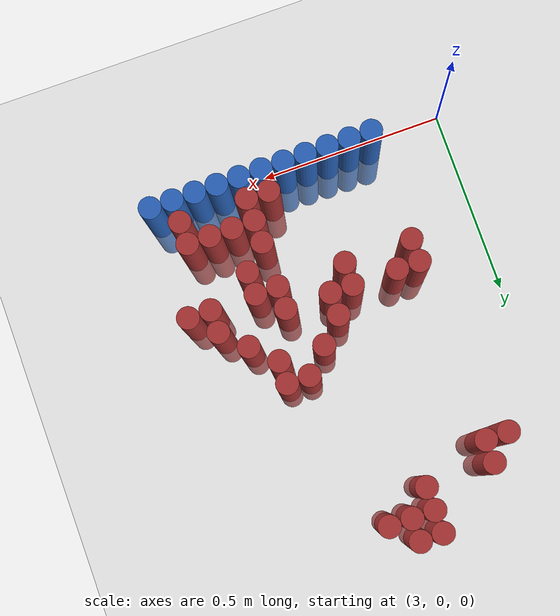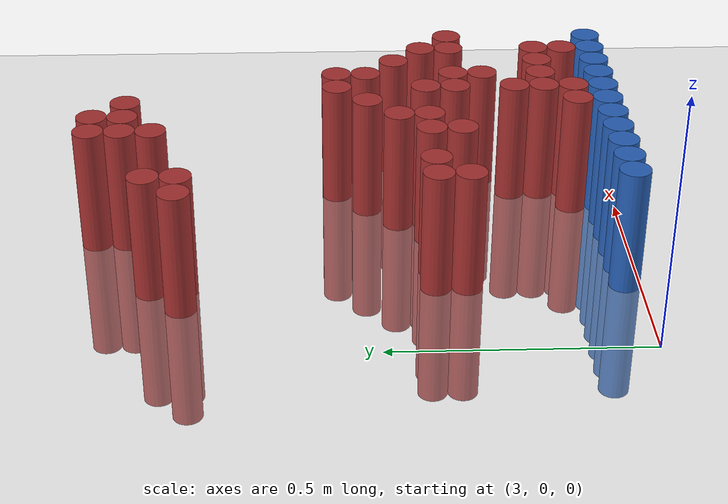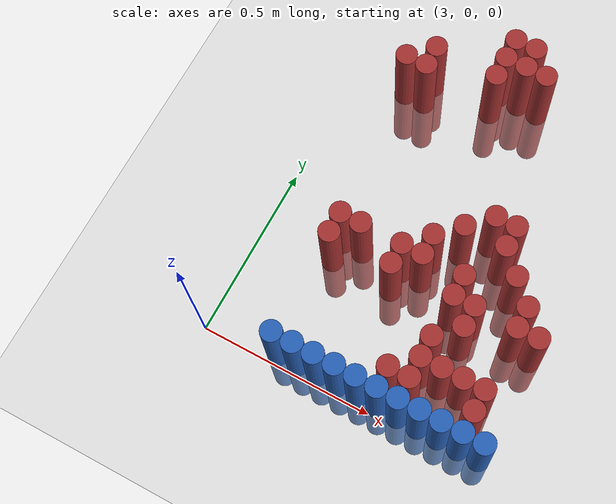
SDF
<sdf version="1.6">
 <world name="default">
  <model name="ground_plane">
   <static>1</static>
   <link name="link">
    <collision name="collision">
     <geometry><plane><normal>0 0 1</normal><size>100 100</size></plane></geometry>
     <surface><friction><ode><mu>100</mu><mu2>50</mu2></ode></friction></surface>
    </collision>
    <visual name="visual">
     <cast_shadows>0</cast_shadows>
     <geometry><plane><normal>0 0 1</normal><size>100 100</size></plane></geometry>
     <material>
      <script><uri>file://media/materials/scripts/gazebo.material</uri><name>Gazebo/Grey</name></script>
     </material>
    </visual>
   </link>
  </model>
  <model name="unit_cylinder_216">
   <static>1</static>
   <pose>3.390000 1.050000 0.000000 0.000000 0.000000 0.000000</pose>
   <link name="link">
    <inertial>
     <mass>1</mass>
     <inertia><ixx>0.145833</ixx><ixy>0</ixy><ixz>0</ixz><iyy>0.145833</iyy><iyz>0</iyz><izz>0.125</izz></inertia>
    </inertial>
    <collision name="collision">
     <geometry><cylinder><radius>0.030000</radius><length>0.5</length></cylinder></geometry>
    </collision>
    <visual name="visual">
     <geometry><cylinder><radius>0.030000</radius><length>0.5</length></cylinder></geometry>
     <material>
      <ambient>0.648000 0.192000 0.192000 1</ambient>
      <diffuse>0.648000 0.192000 0.192000 1</diffuse>
     </material>
     <material>
      <script><name>Gazebo/Grey</name><uri>file://media/materials/scripts/gazebo.material</uri></script>
     </material>
    </visual>
   </link>
  </model>
  <model name="unit_cylinder_217">
   <static>1</static>
   <pose>3.450000 1.050000 0.000000 0.000000 0.000000 0.000000</pose>
   <link name="link">
    <inertial>
     <mass>1</mass>
     <inertia><ixx>0.145833</ixx><ixy>0</ixy><ixz>0</ixz><iyy>0.145833</iyy><iyz>0</iyz><izz>0.125</izz></inertia>
    </inertial>
    <collision name="collision">
     <geometry><cylinder><radius>0.030000</radius><length>0.5</length></cylinder></geometry>
    </collision>
    <visual name="visual">
     <geometry><cylinder><radius>0.030000</radius><length>0.5</length></cylinder></geometry>
     <material>
      <ambient>0.648000 0.192000 0.192000 1</ambient>
      <diffuse>0.648000 0.192000 0.192000 1</diffuse>
     </material>
     <material>
      <script><name>Gazebo/Grey</name><uri>file://media/materials/scripts/gazebo.material</uri></script>
     </material>
    </visual>
   </link>
  </model>
  <model name="unit_cylinder_227">
   <static>1</static>
   <pose>3.390000 0.990000 0.000000 0.000000 0.000000 0.000000</pose>
   <link name="link">
    <inertial>
     <mass>1</mass>
     <inertia><ixx>0.145833</ixx><ixy>0</ixy><ixz>0</ixz><iyy>0.145833</iyy><iyz>0</iyz><izz>0.125</izz></inertia>
    </inertial>
    <collision name="collision">
     <geometry><cylinder><radius>0.030000</radius><length>0.5</length></cylinder></geometry>
    </collision>
    <visual name="visual">
     <geometry><cylinder><radius>0.030000</radius><length>0.5</length></cylinder></geometry>
     <material>
      <ambient>0.648000 0.192000 0.192000 1</ambient>
      <diffuse>0.648000 0.192000 0.192000 1</diffuse>
     </material>
     <material>
      <script><name>Gazebo/Grey</name><uri>file://media/materials/scripts/gazebo.material</uri></script>
     </material>
    </visual>
   </link>
  </model>
  <model name="unit_cylinder_228">
   <static>1</static>
   <pose>3.450000 0.990000 0.000000 0.000000 0.000000 0.000000</pose>
   <link name="link">
    <inertial>
     <mass>1</mass>
     <inertia><ixx>0.145833</ixx><ixy>0</ixy><ixz>0</ixz><iyy>0.145833</iyy><iyz>0</iyz><izz>0.125</izz></inertia>
    </inertial>
    <collision name="collision">
     <geometry><cylinder><radius>0.030000</radius><length>0.5</length></cylinder></geometry>
    </collision>
    <visual name="visual">
     <geometry><cylinder><radius>0.030000</radius><length>0.5</length></cylinder></geometry>
     <material>
      <ambient>0.648000 0.192000 0.192000 1</ambient>
      <diffuse>0.648000 0.192000 0.192000 1</diffuse>
     </material>
     <material>
      <script><name>Gazebo/Grey</name><uri>file://media/materials/scripts/gazebo.material</uri></script>
     </material>
    </visual>
   </link>
  </model>
  <model name="unit_cylinder_229">
   <static>1</static>
   <pose>3.510000 0.990000 0.000000 0.000000 0.000000 0.000000</pose>
   <link name="link">
    <inertial>
     <mass>1</mass>
     <inertia><ixx>0.145833</ixx><ixy>0</ixy><ixz>0</ixz><iyy>0.145833</iyy><iyz>0</iyz><izz>0.125</izz></inertia>
    </inertial>
    <collision name="collision">
     <geometry><cylinder><radius>0.030000</radius><length>0.5</length></cylinder></geometry>
    </collision>
    <visual name="visual">
     <geometry><cylinder><radius>0.030000</radius><length>0.5</length></cylinder></geometry>
     <material>
      <ambient>0.648000 0.192000 0.192000 1</ambient>
      <diffuse>0.648000 0.192000 0.192000 1</diffuse>
     </material>
     <material>
      <script><name>Gazebo/Grey</name><uri>file://media/materials/scripts/gazebo.material</uri></script>
     </material>
    </visual>
   </link>
  </model>
  <model name="unit_cylinder_235">
   <static>1</static>
   <pose>3.210000 0.930000 0.000000 0.000000 0.000000 0.000000</pose>
   <link name="link">
    <inertial>
     <mass>1</mass>
     <inertia><ixx>0.145833</ixx><ixy>0</ixy><ixz>0</ixz><iyy>0.145833</iyy><iyz>0</iyz><izz>0.125</izz></inertia>
    </inertial>
    <collision name="collision">
     <geometry><cylinder><radius>0.030000</radius><length>0.5</length></cylinder></geometry>
    </collision>
    <visual name="visual">
     <geometry><cylinder><radius>0.030000</radius><length>0.5</length></cylinder></geometry>
     <material>
      <ambient>0.648000 0.192000 0.192000 1</ambient>
      <diffuse>0.648000 0.192000 0.192000 1</diffuse>
     </material>
     <material>
      <script><name>Gazebo/Grey</name><uri>file://media/materials/scripts/gazebo.material</uri></script>
     </material>
    </visual>
   </link>
  </model>
  <model name="unit_cylinder_236">
   <static>1</static>
   <pose>3.390000 0.930000 0.000000 0.000000 0.000000 0.000000</pose>
   <link name="link">
    <inertial>
     <mass>1</mass>
     <inertia><ixx>0.145833</ixx><ixy>0</ixy><ixz>0</ixz><iyy>0.145833</iyy><iyz>0</iyz><izz>0.125</izz></inertia>
    </inertial>
    <collision name="collision">
     <geometry><cylinder><radius>0.030000</radius><length>0.5</length></cylinder></geometry>
    </collision>
    <visual name="visual">
     <geometry><cylinder><radius>0.030000</radius><length>0.5</length></cylinder></geometry>
     <material>
      <ambient>0.648000 0.192000 0.192000 1</ambient>
      <diffuse>0.648000 0.192000 0.192000 1</diffuse>
     </material>
     <material>
      <script><name>Gazebo/Grey</name><uri>file://media/materials/scripts/gazebo.material</uri></script>
     </material>
    </visual>
   </link>
  </model>
  <model name="unit_cylinder_242">
   <static>1</static>
   <pose>3.150000 0.870000 0.000000 0.000000 0.000000 0.000000</pose>
   <link name="link">
    <inertial>
     <mass>1</mass>
     <inertia><ixx>0.145833</ixx><ixy>0</ixy><ixz>0</ixz><iyy>0.145833</iyy><iyz>0</iyz><izz>0.125</izz></inertia>
    </inertial>
    <collision name="collision">
     <geometry><cylinder><radius>0.030000</radius><length>0.5</length></cylinder></geometry>
    </collision>
    <visual name="visual">
     <geometry><cylinder><radius>0.030000</radius><length>0.5</length></cylinder></geometry>
     <material>
      <ambient>0.648000 0.192000 0.192000 1</ambient>
      <diffuse>0.648000 0.192000 0.192000 1</diffuse>
     </material>
     <material>
      <script><name>Gazebo/Grey</name><uri>file://media/materials/scripts/gazebo.material</uri></script>
     </material>
    </visual>
   </link>
  </model>
  <model name="unit_cylinder_243">
   <static>1</static>
   <pose>3.210000 0.870000 0.000000 0.000000 0.000000 0.000000</pose>
   <link name="link">
    <inertial>
     <mass>1</mass>
     <inertia><ixx>0.145833</ixx><ixy>0</ixy><ixz>0</ixz><iyy>0.145833</iyy><iyz>0</iyz><izz>0.125</izz></inertia>
    </inertial>
    <collision name="collision">
     <geometry><cylinder><radius>0.030000</radius><length>0.5</length></cylinder></geometry>
    </collision>
    <visual name="visual">
     <geometry><cylinder><radius>0.030000</radius><length>0.5</length></cylinder></geometry>
     <material>
      <ambient>0.648000 0.192000 0.192000 1</ambient>
      <diffuse>0.648000 0.192000 0.192000 1</diffuse>
     </material>
     <material>
      <script><name>Gazebo/Grey</name><uri>file://media/materials/scripts/gazebo.material</uri></script>
     </material>
    </visual>
   </link>
  </model>
  <model name="unit_cylinder_253">
   <static>1</static>
   <pose>3.570000 0.570000 0.000000 0.000000 0.000000 0.000000</pose>
   <link name="link">
    <inertial>
     <mass>1</mass>
     <inertia><ixx>0.145833</ixx><ixy>0</ixy><ixz>0</ixz><iyy>0.145833</iyy><iyz>0</iyz><izz>0.125</izz></inertia>
    </inertial>
    <collision name="collision">
     <geometry><cylinder><radius>0.030000</radius><length>0.5</length></cylinder></geometry>
    </collision>
    <visual name="visual">
     <geometry><cylinder><radius>0.030000</radius><length>0.5</length></cylinder></geometry>
     <material>
      <ambient>0.648000 0.192000 0.192000 1</ambient>
      <diffuse>0.648000 0.192000 0.192000 1</diffuse>
     </material>
     <material>
      <script><name>Gazebo/Grey</name><uri>file://media/materials/scripts/gazebo.material</uri></script>
     </material>
    </visual>
   </link>
  </model>
  <model name="unit_cylinder_254">
   <static>1</static>
   <pose>3.630000 0.570000 0.000000 0.000000 0.000000 0.000000</pose>
   <link name="link">
    <inertial>
     <mass>1</mass>
     <inertia><ixx>0.145833</ixx><ixy>0</ixy><ixz>0</ixz><iyy>0.145833</iyy><iyz>0</iyz><izz>0.125</izz></inertia>
    </inertial>
    <collision name="collision">
     <geometry><cylinder><radius>0.030000</radius><length>0.5</length></cylinder></geometry>
    </collision>
    <visual name="visual">
     <geometry><cylinder><radius>0.030000</radius><length>0.5</length></cylinder></geometry>
     <material>
      <ambient>0.648000 0.192000 0.192000 1</ambient>
      <diffuse>0.648000 0.192000 0.192000 1</diffuse>
     </material>
     <material>
      <script><name>Gazebo/Grey</name><uri>file://media/materials/scripts/gazebo.material</uri></script>
     </material>
    </visual>
   </link>
  </model>
  <model name="unit_cylinder_255">
   <static>1</static>
   <pose>3.510000 0.510000 0.000000 0.000000 0.000000 0.000000</pose>
   <link name="link">
    <inertial>
     <mass>1</mass>
     <inertia><ixx>0.145833</ixx><ixy>0</ixy><ixz>0</ixz><iyy>0.145833</iyy><iyz>0</iyz><izz>0.125</izz></inertia>
    </inertial>
    <collision name="collision">
     <geometry><cylinder><radius>0.030000</radius><length>0.5</length></cylinder></geometry>
    </collision>
    <visual name="visual">
     <geometry><cylinder><radius>0.030000</radius><length>0.5</length></cylinder></geometry>
     <material>
      <ambient>0.648000 0.192000 0.192000 1</ambient>
      <diffuse>0.648000 0.192000 0.192000 1</diffuse>
     </material>
     <material>
      <script><name>Gazebo/Grey</name><uri>file://media/materials/scripts/gazebo.material</uri></script>
     </material>
    </visual>
   </link>
  </model>
  <model name="unit_cylinder_256">
   <static>1</static>
   <pose>3.630000 0.510000 0.000000 0.000000 0.000000 0.000000</pose>
   <link name="link">
    <inertial>
     <mass>1</mass>
     <inertia><ixx>0.145833</ixx><ixy>0</ixy><ixz>0</ixz><iyy>0.145833</iyy><iyz>0</iyz><izz>0.125</izz></inertia>
    </inertial>
    <collision name="collision">
     <geometry><cylinder><radius>0.030000</radius><length>0.5</length></cylinder></geometry>
    </collision>
    <visual name="visual">
     <geometry><cylinder><radius>0.030000</radius><length>0.5</length></cylinder></geometry>
     <material>
      <ambient>0.648000 0.192000 0.192000 1</ambient>
      <diffuse>0.648000 0.192000 0.192000 1</diffuse>
     </material>
     <material>
      <script><name>Gazebo/Grey</name><uri>file://media/materials/scripts/gazebo.material</uri></script>
     </material>
    </visual>
   </link>
  </model>
  <model name="unit_cylinder_257">
   <static>1</static>
   <pose>3.450000 0.450000 0.000000 0.000000 0.000000 0.000000</pose>
   <link name="link">
    <inertial>
     <mass>1</mass>
     <inertia><ixx>0.145833</ixx><ixy>0</ixy><ixz>0</ixz><iyy>0.145833</iyy><iyz>0</iyz><izz>0.125</izz></inertia>
    </inertial>
    <collision name="collision">
     <geometry><cylinder><radius>0.030000</radius><length>0.5</length></cylinder></geometry>
    </collision>
    <visual name="visual">
     <geometry><cylinder><radius>0.030000</radius><length>0.5</length></cylinder></geometry>
     <material>
      <ambient>0.648000 0.192000 0.192000 1</ambient>
      <diffuse>0.648000 0.192000 0.192000 1</diffuse>
     </material>
     <material>
      <script><name>Gazebo/Grey</name><uri>file://media/materials/scripts/gazebo.material</uri></script>
     </material>
    </visual>
   </link>
  </model>
  <model name="unit_cylinder_258">
   <static>1</static>
   <pose>3.690000 0.450000 0.000000 0.000000 0.000000 0.000000</pose>
   <link name="link">
    <inertial>
     <mass>1</mass>
     <inertia><ixx>0.145833</ixx><ixy>0</ixy><ixz>0</ixz><iyy>0.145833</iyy><iyz>0</iyz><izz>0.125</izz></inertia>
    </inertial>
    <collision name="collision">
     <geometry><cylinder><radius>0.030000</radius><length>0.5</length></cylinder></geometry>
    </collision>
    <visual name="visual">
     <geometry><cylinder><radius>0.030000</radius><length>0.5</length></cylinder></geometry>
     <material>
      <ambient>0.648000 0.192000 0.192000 1</ambient>
      <diffuse>0.648000 0.192000 0.192000 1</diffuse>
     </material>
     <material>
      <script><name>Gazebo/Grey</name><uri>file://media/materials/scripts/gazebo.material</uri></script>
     </material>
    </visual>
   </link>
  </model>
  <model name="unit_cylinder_261">
   <static>1</static>
   <pose>3.210000 0.390000 0.000000 0.000000 0.000000 0.000000</pose>
   <link name="link">
    <inertial>
     <mass>1</mass>
     <inertia><ixx>0.145833</ixx><ixy>0</ixy><ixz>0</ixz><iyy>0.145833</iyy><iyz>0</iyz><izz>0.125</izz></inertia>
    </inertial>
    <collision name="collision">
     <geometry><cylinder><radius>0.030000</radius><length>0.5</length></cylinder></geometry>
    </collision>
    <visual name="visual">
     <geometry><cylinder><radius>0.030000</radius><length>0.5</length></cylinder></geometry>
     <material>
      <ambient>0.648000 0.192000 0.192000 1</ambient>
      <diffuse>0.648000 0.192000 0.192000 1</diffuse>
     </material>
     <material>
      <script><name>Gazebo/Grey</name><uri>file://media/materials/scripts/gazebo.material</uri></script>
     </material>
    </visual>
   </link>
  </model>
  <model name="unit_cylinder_262">
   <static>1</static>
   <pose>3.270000 0.390000 0.000000 0.000000 0.000000 0.000000</pose>
   <link name="link">
    <inertial>
     <mass>1</mass>
     <inertia><ixx>0.145833</ixx><ixy>0</ixy><ixz>0</ixz><iyy>0.145833</iyy><iyz>0</iyz><izz>0.125</izz></inertia>
    </inertial>
    <collision name="collision">
     <geometry><cylinder><radius>0.030000</radius><length>0.5</length></cylinder></geometry>
    </collision>
    <visual name="visual">
     <geometry><cylinder><radius>0.030000</radius><length>0.5</length></cylinder></geometry>
     <material>
      <ambient>0.648000 0.192000 0.192000 1</ambient>
      <diffuse>0.648000 0.192000 0.192000 1</diffuse>
     </material>
     <material>
      <script><name>Gazebo/Grey</name><uri>file://media/materials/scripts/gazebo.material</uri></script>
     </material>
    </visual>
   </link>
  </model>
  <model name="unit_cylinder_263">
   <static>1</static>
   <pose>3.390000 0.390000 0.000000 0.000000 0.000000 0.000000</pose>
   <link name="link">
    <inertial>
     <mass>1</mass>
     <inertia><ixx>0.145833</ixx><ixy>0</ixy><ixz>0</ixz><iyy>0.145833</iyy><iyz>0</iyz><izz>0.125</izz></inertia>
    </inertial>
    <collision name="collision">
     <geometry><cylinder><radius>0.030000</radius><length>0.5</length></cylinder></geometry>
    </collision>
    <visual name="visual">
     <geometry><cylinder><radius>0.030000</radius><length>0.5</length></cylinder></geometry>
     <material>
      <ambient>0.648000 0.192000 0.192000 1</ambient>
      <diffuse>0.648000 0.192000 0.192000 1</diffuse>
     </material>
     <material>
      <script><name>Gazebo/Grey</name><uri>file://media/materials/scripts/gazebo.material</uri></script>
     </material>
    </visual>
   </link>
  </model>
  <model name="unit_cylinder_264">
   <static>1</static>
   <pose>3.450000 0.390000 0.000000 0.000000 0.000000 0.000000</pose>
   <link name="link">
    <inertial>
     <mass>1</mass>
     <inertia><ixx>0.145833</ixx><ixy>0</ixy><ixz>0</ixz><iyy>0.145833</iyy><iyz>0</iyz><izz>0.125</izz></inertia>
    </inertial>
    <collision name="collision">
     <geometry><cylinder><radius>0.030000</radius><length>0.5</length></cylinder></geometry>
    </collision>
    <visual name="visual">
     <geometry><cylinder><radius>0.030000</radius><length>0.5</length></cylinder></geometry>
     <material>
      <ambient>0.648000 0.192000 0.192000 1</ambient>
      <diffuse>0.648000 0.192000 0.192000 1</diffuse>
     </material>
     <material>
      <script><name>Gazebo/Grey</name><uri>file://media/materials/scripts/gazebo.material</uri></script>
     </material>
    </visual>
   </link>
  </model>
  <model name="unit_cylinder_265">
   <static>1</static>
   <pose>3.570000 0.390000 0.000000 0.000000 0.000000 0.000000</pose>
   <link name="link">
    <inertial>
     <mass>1</mass>
     <inertia><ixx>0.145833</ixx><ixy>0</ixy><ixz>0</ixz><iyy>0.145833</iyy><iyz>0</iyz><izz>0.125</izz></inertia>
    </inertial>
    <collision name="collision">
     <geometry><cylinder><radius>0.030000</radius><length>0.5</length></cylinder></geometry>
    </collision>
    <visual name="visual">
     <geometry><cylinder><radius>0.030000</radius><length>0.5</length></cylinder></geometry>
     <material>
      <ambient>0.648000 0.192000 0.192000 1</ambient>
      <diffuse>0.648000 0.192000 0.192000 1</diffuse>
     </material>
     <material>
      <script><name>Gazebo/Grey</name><uri>file://media/materials/scripts/gazebo.material</uri></script>
     </material>
    </visual>
   </link>
  </model>
  <model name="unit_cylinder_266">
   <static>1</static>
   <pose>3.750000 0.390000 0.000000 0.000000 0.000000 0.000000</pose>
   <link name="link">
    <inertial>
     <mass>1</mass>
     <inertia><ixx>0.145833</ixx><ixy>0</ixy><ixz>0</ixz><iyy>0.145833</iyy><iyz>0</iyz><izz>0.125</izz></inertia>
    </inertial>
    <collision name="collision">
     <geometry><cylinder><radius>0.030000</radius><length>0.5</length></cylinder></geometry>
    </collision>
    <visual name="visual">
     <geometry><cylinder><radius>0.030000</radius><length>0.5</length></cylinder></geometry>
     <material>
      <ambient>0.648000 0.192000 0.192000 1</ambient>
      <diffuse>0.648000 0.192000 0.192000 1</diffuse>
     </material>
     <material>
      <script><name>Gazebo/Grey</name><uri>file://media/materials/scripts/gazebo.material</uri></script>
     </material>
    </visual>
   </link>
  </model>
  <model name="unit_cylinder_270">
   <static>1</static>
   <pose>3.210000 0.330000 0.000000 0.000000 0.000000 0.000000</pose>
   <link name="link">
    <inertial>
     <mass>1</mass>
     <inertia><ixx>0.145833</ixx><ixy>0</ixy><ixz>0</ixz><iyy>0.145833</iyy><iyz>0</iyz><izz>0.125</izz></inertia>
    </inertial>
    <collision name="collision">
     <geometry><cylinder><radius>0.030000</radius><length>0.5</length></cylinder></geometry>
    </collision>
    <visual name="visual">
     <geometry><cylinder><radius>0.030000</radius><length>0.5</length></cylinder></geometry>
     <material>
      <ambient>0.648000 0.192000 0.192000 1</ambient>
      <diffuse>0.648000 0.192000 0.192000 1</diffuse>
     </material>
     <material>
      <script><name>Gazebo/Grey</name><uri>file://media/materials/scripts/gazebo.material</uri></script>
     </material>
    </visual>
   </link>
  </model>
  <model name="unit_cylinder_271">
   <static>1</static>
   <pose>3.390000 0.330000 0.000000 0.000000 0.000000 0.000000</pose>
   <link name="link">
    <inertial>
     <mass>1</mass>
     <inertia><ixx>0.145833</ixx><ixy>0</ixy><ixz>0</ixz><iyy>0.145833</iyy><iyz>0</iyz><izz>0.125</izz></inertia>
    </inertial>
    <collision name="collision">
     <geometry><cylinder><radius>0.030000</radius><length>0.5</length></cylinder></geometry>
    </collision>
    <visual name="visual">
     <geometry><cylinder><radius>0.030000</radius><length>0.5</length></cylinder></geometry>
     <material>
      <ambient>0.648000 0.192000 0.192000 1</ambient>
      <diffuse>0.648000 0.192000 0.192000 1</diffuse>
     </material>
     <material>
      <script><name>Gazebo/Grey</name><uri>file://media/materials/scripts/gazebo.material</uri></script>
     </material>
    </visual>
   </link>
  </model>
  <model name="unit_cylinder_272">
   <static>1</static>
   <pose>3.570000 0.330000 0.000000 0.000000 0.000000 0.000000</pose>
   <link name="link">
    <inertial>
     <mass>1</mass>
     <inertia><ixx>0.145833</ixx><ixy>0</ixy><ixz>0</ixz><iyy>0.145833</iyy><iyz>0</iyz><izz>0.125</izz></inertia>
    </inertial>
    <collision name="collision">
     <geometry><cylinder><radius>0.030000</radius><length>0.5</length></cylinder></geometry>
    </collision>
    <visual name="visual">
     <geometry><cylinder><radius>0.030000</radius><length>0.5</length></cylinder></geometry>
     <material>
      <ambient>0.648000 0.192000 0.192000 1</ambient>
      <diffuse>0.648000 0.192000 0.192000 1</diffuse>
     </material>
     <material>
      <script><name>Gazebo/Grey</name><uri>file://media/materials/scripts/gazebo.material</uri></script>
     </material>
    </visual>
   </link>
  </model>
  <model name="unit_cylinder_273">
   <static>1</static>
   <pose>3.630000 0.330000 0.000000 0.000000 0.000000 0.000000</pose>
   <link name="link">
    <inertial>
     <mass>1</mass>
     <inertia><ixx>0.145833</ixx><ixy>0</ixy><ixz>0</ixz><iyy>0.145833</iyy><iyz>0</iyz><izz>0.125</izz></inertia>
    </inertial>
    <collision name="collision">
     <geometry><cylinder><radius>0.030000</radius><length>0.5</length></cylinder></geometry>
    </collision>
    <visual name="visual">
     <geometry><cylinder><radius>0.030000</radius><length>0.5</length></cylinder></geometry>
     <material>
      <ambient>0.648000 0.192000 0.192000 1</ambient>
      <diffuse>0.648000 0.192000 0.192000 1</diffuse>
     </material>
     <material>
      <script><name>Gazebo/Grey</name><uri>file://media/materials/scripts/gazebo.material</uri></script>
     </material>
    </visual>
   </link>
  </model>
  <model name="unit_cylinder_274">
   <static>1</static>
   <pose>3.750000 0.330000 0.000000 0.000000 0.000000 0.000000</pose>
   <link name="link">
    <inertial>
     <mass>1</mass>
     <inertia><ixx>0.145833</ixx><ixy>0</ixy><ixz>0</ixz><iyy>0.145833</iyy><iyz>0</iyz><izz>0.125</izz></inertia>
    </inertial>
    <collision name="collision">
     <geometry><cylinder><radius>0.030000</radius><length>0.5</length></cylinder></geometry>
    </collision>
    <visual name="visual">
     <geometry><cylinder><radius>0.030000</radius><length>0.5</length></cylinder></geometry>
     <material>
      <ambient>0.648000 0.192000 0.192000 1</ambient>
      <diffuse>0.648000 0.192000 0.192000 1</diffuse>
     </material>
     <material>
      <script><name>Gazebo/Grey</name><uri>file://media/materials/scripts/gazebo.material</uri></script>
     </material>
    </visual>
   </link>
  </model>
  <model name="unit_cylinder_275">
   <static>1</static>
   <pose>3.810000 0.330000 0.000000 0.000000 0.000000 0.000000</pose>
   <link name="link">
    <inertial>
     <mass>1</mass>
     <inertia><ixx>0.145833</ixx><ixy>0</ixy><ixz>0</ixz><iyy>0.145833</iyy><iyz>0</iyz><izz>0.125</izz></inertia>
    </inertial>
    <collision name="collision">
     <geometry><cylinder><radius>0.030000</radius><length>0.5</length></cylinder></geometry>
    </collision>
    <visual name="visual">
     <geometry><cylinder><radius>0.030000</radius><length>0.5</length></cylinder></geometry>
     <material>
      <ambient>0.648000 0.192000 0.192000 1</ambient>
      <diffuse>0.648000 0.192000 0.192000 1</diffuse>
     </material>
     <material>
      <script><name>Gazebo/Grey</name><uri>file://media/materials/scripts/gazebo.material</uri></script>
     </material>
    </visual>
   </link>
  </model>
  <model name="unit_cylinder_278">
   <static>1</static>
   <pose>3.630000 0.270000 0.000000 0.000000 0.000000 0.000000</pose>
   <link name="link">
    <inertial>
     <mass>1</mass>
     <inertia><ixx>0.145833</ixx><ixy>0</ixy><ixz>0</ixz><iyy>0.145833</iyy><iyz>0</iyz><izz>0.125</izz></inertia>
    </inertial>
    <collision name="collision">
     <geometry><cylinder><radius>0.030000</radius><length>0.5</length></cylinder></geometry>
    </collision>
    <visual name="visual">
     <geometry><cylinder><radius>0.030000</radius><length>0.5</length></cylinder></geometry>
     <material>
      <ambient>0.648000 0.192000 0.192000 1</ambient>
      <diffuse>0.648000 0.192000 0.192000 1</diffuse>
     </material>
     <material>
      <script><name>Gazebo/Grey</name><uri>file://media/materials/scripts/gazebo.material</uri></script>
     </material>
    </visual>
   </link>
  </model>
  <model name="unit_cylinder_279">
   <static>1</static>
   <pose>3.570000 0.210000 0.000000 0.000000 0.000000 0.000000</pose>
   <link name="link">
    <inertial>
     <mass>1</mass>
     <inertia><ixx>0.145833</ixx><ixy>0</ixy><ixz>0</ixz><iyy>0.145833</iyy><iyz>0</iyz><izz>0.125</izz></inertia>
    </inertial>
    <collision name="collision">
     <geometry><cylinder><radius>0.030000</radius><length>0.5</length></cylinder></geometry>
    </collision>
    <visual name="visual">
     <geometry><cylinder><radius>0.030000</radius><length>0.5</length></cylinder></geometry>
     <material>
      <ambient>0.648000 0.192000 0.192000 1</ambient>
      <diffuse>0.648000 0.192000 0.192000 1</diffuse>
     </material>
     <material>
      <script><name>Gazebo/Grey</name><uri>file://media/materials/scripts/gazebo.material</uri></script>
     </material>
    </visual>
   </link>
  </model>
  <model name="unit_cylinder_282">
   <static>1</static>
   <pose>3.570000 0.150000 0.000000 0.000000 0.000000 0.000000</pose>
   <link name="link">
    <inertial>
     <mass>1</mass>
     <inertia><ixx>0.145833</ixx><ixy>0</ixy><ixz>0</ixz><iyy>0.145833</iyy><iyz>0</iyz><izz>0.125</izz></inertia>
    </inertial>
    <collision name="collision">
     <geometry><cylinder><radius>0.030000</radius><length>0.5</length></cylinder></geometry>
    </collision>
    <visual name="visual">
     <geometry><cylinder><radius>0.030000</radius><length>0.5</length></cylinder></geometry>
     <material>
      <ambient>0.648000 0.192000 0.192000 1</ambient>
      <diffuse>0.648000 0.192000 0.192000 1</diffuse>
     </material>
     <material>
      <script><name>Gazebo/Grey</name><uri>file://media/materials/scripts/gazebo.material</uri></script>
     </material>
    </visual>
   </link>
  </model>
  <model name="unit_cylinder_283">
   <static>1</static>
   <pose>3.630000 0.150000 0.000000 0.000000 0.000000 0.000000</pose>
   <link name="link">
    <inertial>
     <mass>1</mass>
     <inertia><ixx>0.145833</ixx><ixy>0</ixy><ixz>0</ixz><iyy>0.145833</iyy><iyz>0</iyz><izz>0.125</izz></inertia>
    </inertial>
    <collision name="collision">
     <geometry><cylinder><radius>0.030000</radius><length>0.5</length></cylinder></geometry>
    </collision>
    <visual name="visual">
     <geometry><cylinder><radius>0.030000</radius><length>0.5</length></cylinder></geometry>
     <material>
      <ambient>0.648000 0.192000 0.192000 1</ambient>
      <diffuse>0.648000 0.192000 0.192000 1</diffuse>
     </material>
     <material>
      <script><name>Gazebo/Grey</name><uri>file://media/materials/scripts/gazebo.material</uri></script>
     </material>
    </visual>
   </link>
  </model>
  <model name="unit_cylinder_284">
   <static>1</static>
   <pose>3.690000 0.150000 0.000000 0.000000 0.000000 0.000000</pose>
   <link name="link">
    <inertial>
     <mass>1</mass>
     <inertia><ixx>0.145833</ixx><ixy>0</ixy><ixz>0</ixz><iyy>0.145833</iyy><iyz>0</iyz><izz>0.125</izz></inertia>
    </inertial>
    <collision name="collision">
     <geometry><cylinder><radius>0.030000</radius><length>0.5</length></cylinder></geometry>
    </collision>
    <visual name="visual">
     <geometry><cylinder><radius>0.030000</radius><length>0.5</length></cylinder></geometry>
     <material>
      <ambient>0.648000 0.192000 0.192000 1</ambient>
      <diffuse>0.648000 0.192000 0.192000 1</diffuse>
     </material>
     <material>
      <script><name>Gazebo/Grey</name><uri>file://media/materials/scripts/gazebo.material</uri></script>
     </material>
    </visual>
   </link>
  </model>
  <model name="unit_cylinder_285">
   <static>1</static>
   <pose>3.750000 0.150000 0.000000 0.000000 0.000000 0.000000</pose>
   <link name="link">
    <inertial>
     <mass>1</mass>
     <inertia><ixx>0.145833</ixx><ixy>0</ixy><ixz>0</ixz><iyy>0.145833</iyy><iyz>0</iyz><izz>0.125</izz></inertia>
    </inertial>
    <collision name="collision">
     <geometry><cylinder><radius>0.030000</radius><length>0.5</length></cylinder></geometry>
    </collision>
    <visual name="visual">
     <geometry><cylinder><radius>0.030000</radius><length>0.5</length></cylinder></geometry>
     <material>
      <ambient>0.648000 0.192000 0.192000 1</ambient>
      <diffuse>0.648000 0.192000 0.192000 1</diffuse>
     </material>
     <material>
      <script><name>Gazebo/Grey</name><uri>file://media/materials/scripts/gazebo.material</uri></script>
     </material>
    </visual>
   </link>
  </model>
  <model name="unit_cylinder_296">
   <static>1</static>
   <pose>3.510000 0.090000 0.000000 0.000000 0.000000 0.000000</pose>
   <link name="link">
    <inertial>
     <mass>1</mass>
     <inertia><ixx>0.145833</ixx><ixy>0</ixy><ixz>0</ixz><iyy>0.145833</iyy><iyz>0</iyz><izz>0.125</izz></inertia>
    </inertial>
    <collision name="collision">
     <geometry><cylinder><radius>0.030000</radius><length>0.5</length></cylinder></geometry>
    </collision>
    <visual name="visual">
     <geometry><cylinder><radius>0.030000</radius><length>0.5</length></cylinder></geometry>
     <material>
      <ambient>0.648000 0.192000 0.192000 1</ambient>
      <diffuse>0.648000 0.192000 0.192000 1</diffuse>
     </material>
     <material>
      <script><name>Gazebo/Grey</name><uri>file://media/materials/scripts/gazebo.material</uri></script>
     </material>
    </visual>
   </link>
  </model>
  <model name="unit_cylinder_297">
   <static>1</static>
   <pose>3.570000 0.090000 0.000000 0.000000 0.000000 0.000000</pose>
   <link name="link">
    <inertial>
     <mass>1</mass>
     <inertia><ixx>0.145833</ixx><ixy>0</ixy><ixz>0</ixz><iyy>0.145833</iyy><iyz>0</iyz><izz>0.125</izz></inertia>
    </inertial>
    <collision name="collision">
     <geometry><cylinder><radius>0.030000</radius><length>0.5</length></cylinder></geometry>
    </collision>
    <visual name="visual">
     <geometry><cylinder><radius>0.030000</radius><length>0.5</length></cylinder></geometry>
     <material>
      <ambient>0.648000 0.192000 0.192000 1</ambient>
      <diffuse>0.648000 0.192000 0.192000 1</diffuse>
     </material>
     <material>
      <script><name>Gazebo/Grey</name><uri>file://media/materials/scripts/gazebo.material</uri></script>
     </material>
    </visual>
   </link>
  </model>
  <model name="unit_cylinder_298">
   <static>1</static>
   <pose>3.750000 0.090000 0.000000 0.000000 0.000000 0.000000</pose>
   <link name="link">
    <inertial>
     <mass>1</mass>
     <inertia><ixx>0.145833</ixx><ixy>0</ixy><ixz>0</ixz><iyy>0.145833</iyy><iyz>0</iyz><izz>0.125</izz></inertia>
    </inertial>
    <collision name="collision">
     <geometry><cylinder><radius>0.030000</radius><length>0.5</length></cylinder></geometry>
    </collision>
    <visual name="visual">
     <geometry><cylinder><radius>0.030000</radius><length>0.5</length></cylinder></geometry>
     <material>
      <ambient>0.648000 0.192000 0.192000 1</ambient>
      <diffuse>0.648000 0.192000 0.192000 1</diffuse>
     </material>
     <material>
      <script><name>Gazebo/Grey</name><uri>file://media/materials/scripts/gazebo.material</uri></script>
     </material>
    </visual>
   </link>
  </model>
  <model name="unit_cylinder_318">
   <static>1</static>
   <pose>3.210000 0.030000 0.000000 0.000000 0.000000 0.000000</pose>
   <link name="link">
    <inertial>
     <mass>1</mass>
     <inertia><ixx>0.145833</ixx><ixy>0</ixy><ixz>0</ixz><iyy>0.145833</iyy><iyz>0</iyz><izz>0.125</izz></inertia>
    </inertial>
    <collision name="collision">
     <geometry><cylinder><radius>0.030000</radius><length>0.5</length></cylinder></geometry>
    </collision>
    <visual name="visual">
     <geometry><cylinder><radius>0.030000</radius><length>0.5</length></cylinder></geometry>
     <material>
      <ambient>0.152000 0.379000 0.720000 1</ambient>
      <diffuse>0.152000 0.379000 0.720000 1</diffuse>
     </material>
     <material>
      <script><name>Gazebo/Grey</name><uri>file://media/materials/scripts/gazebo.material</uri></script>
     </material>
    </visual>
   </link>
  </model>
  <model name="unit_cylinder_319">
   <static>1</static>
   <pose>3.270000 0.030000 0.000000 0.000000 0.000000 0.000000</pose>
   <link name="link">
    <inertial>
     <mass>1</mass>
     <inertia><ixx>0.145833</ixx><ixy>0</ixy><ixz>0</ixz><iyy>0.145833</iyy><iyz>0</iyz><izz>0.125</izz></inertia>
    </inertial>
    <collision name="collision">
     <geometry><cylinder><radius>0.030000</radius><length>0.5</length></cylinder></geometry>
    </collision>
    <visual name="visual">
     <geometry><cylinder><radius>0.030000</radius><length>0.5</length></cylinder></geometry>
     <material>
      <ambient>0.152000 0.379000 0.720000 1</ambient>
      <diffuse>0.152000 0.379000 0.720000 1</diffuse>
     </material>
     <material>
      <script><name>Gazebo/Grey</name><uri>file://media/materials/scripts/gazebo.material</uri></script>
     </material>
    </visual>
   </link>
  </model>
  <model name="unit_cylinder_320">
   <static>1</static>
   <pose>3.330000 0.030000 0.000000 0.000000 0.000000 0.000000</pose>
   <link name="link">
    <inertial>
     <mass>1</mass>
     <inertia><ixx>0.145833</ixx><ixy>0</ixy><ixz>0</ixz><iyy>0.145833</iyy><iyz>0</iyz><izz>0.125</izz></inertia>
    </inertial>
    <collision name="collision">
     <geometry><cylinder><radius>0.030000</radius><length>0.5</length></cylinder></geometry>
    </collision>
    <visual name="visual">
     <geometry><cylinder><radius>0.030000</radius><length>0.5</length></cylinder></geometry>
     <material>
      <ambient>0.152000 0.379000 0.720000 1</ambient>
      <diffuse>0.152000 0.379000 0.720000 1</diffuse>
     </material>
     <material>
      <script><name>Gazebo/Grey</name><uri>file://media/materials/scripts/gazebo.material</uri></script>
     </material>
    </visual>
   </link>
  </model>
  <model name="unit_cylinder_321">
   <static>1</static>
   <pose>3.390000 0.030000 0.000000 0.000000 0.000000 0.000000</pose>
   <link name="link">
    <inertial>
     <mass>1</mass>
     <inertia><ixx>0.145833</ixx><ixy>0</ixy><ixz>0</ixz><iyy>0.145833</iyy><iyz>0</iyz><izz>0.125</izz></inertia>
    </inertial>
    <collision name="collision">
     <geometry><cylinder><radius>0.030000</radius><length>0.5</length></cylinder></geometry>
    </collision>
    <visual name="visual">
     <geometry><cylinder><radius>0.030000</radius><length>0.5</length></cylinder></geometry>
     <material>
      <ambient>0.152000 0.379000 0.720000 1</ambient>
      <diffuse>0.152000 0.379000 0.720000 1</diffuse>
     </material>
     <material>
      <script><name>Gazebo/Grey</name><uri>file://media/materials/scripts/gazebo.material</uri></script>
     </material>
    </visual>
   </link>
  </model>
  <model name="unit_cylinder_322">
   <static>1</static>
   <pose>3.450000 0.030000 0.000000 0.000000 0.000000 0.000000</pose>
   <link name="link">
    <inertial>
     <mass>1</mass>
     <inertia><ixx>0.145833</ixx><ixy>0</ixy><ixz>0</ixz><iyy>0.145833</iyy><iyz>0</iyz><izz>0.125</izz></inertia>
    </inertial>
    <collision name="collision">
     <geometry><cylinder><radius>0.030000</radius><length>0.5</length></cylinder></geometry>
    </collision>
    <visual name="visual">
     <geometry><cylinder><radius>0.030000</radius><length>0.5</length></cylinder></geometry>
     <material>
      <ambient>0.152000 0.379000 0.720000 1</ambient>
      <diffuse>0.152000 0.379000 0.720000 1</diffuse>
     </material>
     <material>
      <script><name>Gazebo/Grey</name><uri>file://media/materials/scripts/gazebo.material</uri></script>
     </material>
    </visual>
   </link>
  </model>
  <model name="unit_cylinder_323">
   <static>1</static>
   <pose>3.510000 0.030000 0.000000 0.000000 0.000000 0.000000</pose>
   <link name="link">
    <inertial>
     <mass>1</mass>
     <inertia><ixx>0.145833</ixx><ixy>0</ixy><ixz>0</ixz><iyy>0.145833</iyy><iyz>0</iyz><izz>0.125</izz></inertia>
    </inertial>
    <collision name="collision">
     <geometry><cylinder><radius>0.030000</radius><length>0.5</length></cylinder></geometry>
    </collision>
    <visual name="visual">
     <geometry><cylinder><radius>0.030000</radius><length>0.5</length></cylinder></geometry>
     <material>
      <ambient>0.152000 0.379000 0.720000 1</ambient>
      <diffuse>0.152000 0.379000 0.720000 1</diffuse>
     </material>
     <material>
      <script><name>Gazebo/Grey</name><uri>file://media/materials/scripts/gazebo.material</uri></script>
     </material>
    </visual>
   </link>
  </model>
  <model name="unit_cylinder_324">
   <static>1</static>
   <pose>3.570000 0.030000 0.000000 0.000000 0.000000 0.000000</pose>
   <link name="link">
    <inertial>
     <mass>1</mass>
     <inertia><ixx>0.145833</ixx><ixy>0</ixy><ixz>0</ixz><iyy>0.145833</iyy><iyz>0</iyz><izz>0.125</izz></inertia>
    </inertial>
    <collision name="collision">
     <geometry><cylinder><radius>0.030000</radius><length>0.5</length></cylinder></geometry>
    </collision>
    <visual name="visual">
     <geometry><cylinder><radius>0.030000</radius><length>0.5</length></cylinder></geometry>
     <material>
      <ambient>0.152000 0.379000 0.720000 1</ambient>
      <diffuse>0.152000 0.379000 0.720000 1</diffuse>
     </material>
     <material>
      <script><name>Gazebo/Grey</name><uri>file://media/materials/scripts/gazebo.material</uri></script>
     </material>
    </visual>
   </link>
  </model>
  <model name="unit_cylinder_325">
   <static>1</static>
   <pose>3.630000 0.030000 0.000000 0.000000 0.000000 0.000000</pose>
   <link name="link">
    <inertial>
     <mass>1</mass>
     <inertia><ixx>0.145833</ixx><ixy>0</ixy><ixz>0</ixz><iyy>0.145833</iyy><iyz>0</iyz><izz>0.125</izz></inertia>
    </inertial>
    <collision name="collision">
     <geometry><cylinder><radius>0.030000</radius><length>0.5</length></cylinder></geometry>
    </collision>
    <visual name="visual">
     <geometry><cylinder><radius>0.030000</radius><length>0.5</length></cylinder></geometry>
     <material>
      <ambient>0.152000 0.379000 0.720000 1</ambient>
      <diffuse>0.152000 0.379000 0.720000 1</diffuse>
     </material>
     <material>
      <script><name>Gazebo/Grey</name><uri>file://media/materials/scripts/gazebo.material</uri></script>
     </material>
    </visual>
   </link>
  </model>
  <model name="unit_cylinder_326">
   <static>1</static>
   <pose>3.690000 0.030000 0.000000 0.000000 0.000000 0.000000</pose>
   <link name="link">
    <inertial>
     <mass>1</mass>
     <inertia><ixx>0.145833</ixx><ixy>0</ixy><ixz>0</ixz><iyy>0.145833</iyy><iyz>0</iyz><izz>0.125</izz></inertia>
    </inertial>
    <collision name="collision">
     <geometry><cylinder><radius>0.030000</radius><length>0.5</length></cylinder></geometry>
    </collision>
    <visual name="visual">
     <geometry><cylinder><radius>0.030000</radius><length>0.5</length></cylinder></geometry>
     <material>
      <ambient>0.152000 0.379000 0.720000 1</ambient>
      <diffuse>0.152000 0.379000 0.720000 1</diffuse>
     </material>
     <material>
      <script><name>Gazebo/Grey</name><uri>file://media/materials/scripts/gazebo.material</uri></script>
     </material>
    </visual>
   </link>
  </model>
  <model name="unit_cylinder_327">
   <static>1</static>
   <pose>3.750000 0.030000 0.000000 0.000000 0.000000 0.000000</pose>
   <link name="link">
    <inertial>
     <mass>1</mass>
     <inertia><ixx>0.145833</ixx><ixy>0</ixy><ixz>0</ixz><iyy>0.145833</iyy><iyz>0</iyz><izz>0.125</izz></inertia>
    </inertial>
    <collision name="collision">
     <geometry><cylinder><radius>0.030000</radius><length>0.5</length></cylinder></geometry>
    </collision>
    <visual name="visual">
     <geometry><cylinder><radius>0.030000</radius><length>0.5</length></cylinder></geometry>
     <material>
      <ambient>0.152000 0.379000 0.720000 1</ambient>
      <diffuse>0.152000 0.379000 0.720000 1</diffuse>
     </material>
     <material>
      <script><name>Gazebo/Grey</name><uri>file://media/materials/scripts/gazebo.material</uri></script>
     </material>
    </visual>
   </link>
  </model>
  <model name="unit_cylinder_328">
   <static>1</static>
   <pose>3.810000 0.030000 0.000000 0.000000 0.000000 0.000000</pose>
   <link name="link">
    <inertial>
     <mass>1</mass>
     <inertia><ixx>0.145833</ixx><ixy>0</ixy><ixz>0</ixz><iyy>0.145833</iyy><iyz>0</iyz><izz>0.125</izz></inertia>
    </inertial>
    <collision name="collision">
     <geometry><cylinder><radius>0.030000</radius><length>0.5</length></cylinder></geometry>
    </collision>
    <visual name="visual">
     <geometry><cylinder><radius>0.030000</radius><length>0.5</length></cylinder></geometry>
     <material>
      <ambient>0.152000 0.379000 0.720000 1</ambient>
      <diffuse>0.152000 0.379000 0.720000 1</diffuse>
     </material>
     <material>
      <script><name>Gazebo/Grey</name><uri>file://media/materials/scripts/gazebo.material</uri></script>
     </material>
    </visual>
   </link>
  </model>
 </world>
</sdf>
